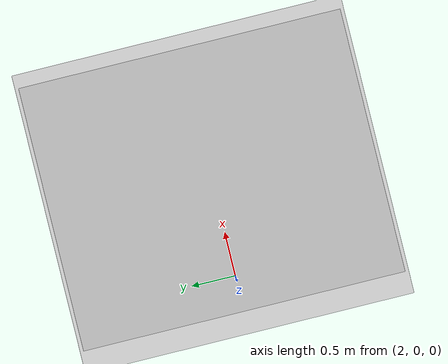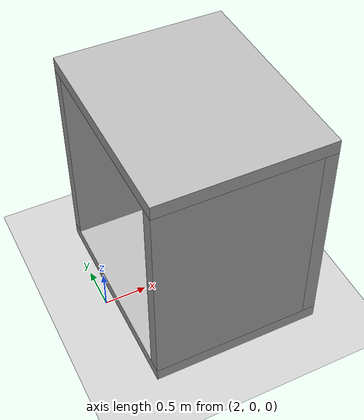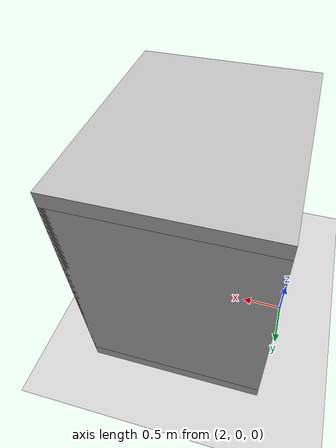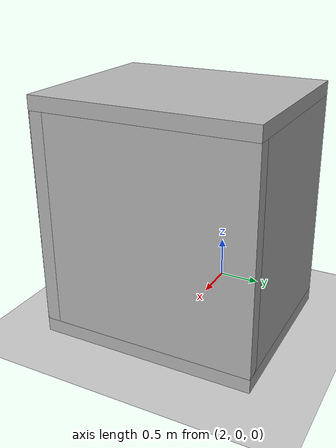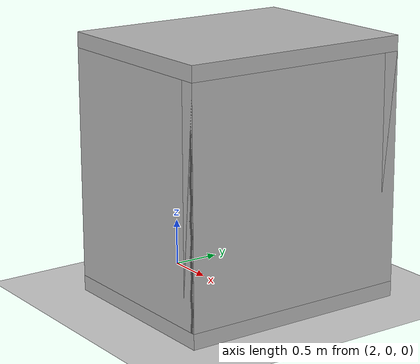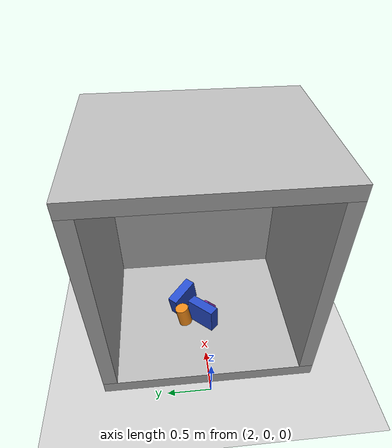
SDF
<sdf version="1.6">
 <world name="default">
  <light name="sun" type="directional">
   <pose>0 0 10 0 -0 0</pose>
   <diffuse>0.8 0.8 0.8 1</diffuse>
   <specular>0.1 0.1 0.1 1</specular>
   <attenuation>
    <range>1000</range>
    <constant>0.9</constant>
    <linear>0.01</linear>
    <quadratic>0.001</quadratic>
   </attenuation>
   <direction>-0.5 0.5 -1</direction>
  </light>
  <model name="ground_plane">
   <static>1</static>
   <link name="link">
    <collision name="collision">
     <geometry><plane><normal>0 0 1</normal><size>100 100</size></plane></geometry>
     <surface><friction><ode><mu>100</mu><mu2>50</mu2></ode></friction></surface>
    </collision>
    <visual name="visual">
     <cast_shadows>0</cast_shadows>
     <geometry><plane><normal>0 0 1</normal><size>100 100</size></plane></geometry>
     <material>
      <script><uri>file://media/materials/scripts/gazebo.material</uri><name>Gazebo/Grey</name></script>
     </material>
    </visual>
   </link>
  </model>
  <physics name="default_physics" default="0" type="ode">
   <real_time_update_rate>0</real_time_update_rate>
   <max_step_size>0.001</max_step_size>
   <real_time_factor>1</real_time_factor>
  </physics>
  <gravity>0 0 -9.8</gravity>
  <magnetic_field>6e-06 2.3e-05 -4.2e-05</magnetic_field>
  <atmosphere type="adiabatic"/>
  <scene><ambient>0.4 0.4 0.4 1</ambient><background>0.7 0.7 0.7 1</background><shadows>1</shadows></scene>
  <spherical_coordinates>
   <surface_model>EARTH_WGS84</surface_model>
   <latitude_deg>0</latitude_deg>
   <longitude_deg>0</longitude_deg>
   <elevation>0</elevation>
   <heading_deg>0</heading_deg>
  </spherical_coordinates>
  <model name="container">
   <link name="container">
    <inertial>
     <pose>0.22439 0 1.64098 0 -0 0</pose>
     <mass>205</mass>
     <inertia>
      <ixx>329.883</ixx>
      <ixy>1.59439e-15</ixy>
      <ixz>12.9249</ixz>
      <iyy>229.817</iyy>
      <iyz>1.16598e-14</iyz>
      <izz>267.609</izz>
     </inertia>
    </inertial>
    <collision name="container_back_collision">
     <pose>0.92 0 1.36 0 -0 0</pose>
     <geometry><box><size>0.16 2.45 2.4</size></box></geometry>
    </collision>
    <collision name="container_bottom_collision_1">
     <pose>0 0 0.08 0 -0 0</pose>
     <geometry><box><size>2 2.45 0.16</size></box></geometry>
    </collision>
    <collision name="container_left_collision_2">
     <pose>0 1.145 1.36 0 -0 0</pose>
     <geometry><box><size>2 0.16 2.4</size></box></geometry>
    </collision>
    <collision name="container_right_collision_3">
     <pose>0 -1.145 1.36 0 -0 0</pose>
     <geometry><box><size>2 0.16 2.4</size></box></geometry>
    </collision>
    <collision name="container_top_collision_4">
     <pose>0 0 2.64 0 -0 0</pose>
     <geometry><box><size>2 2.45 0.16</size></box></geometry>
    </collision>
    <visual name="container_back_visual">
     <pose>0.92 0 1.36 0 -0 0</pose>
     <geometry><box><size>0.16 2.45 2.4</size></box></geometry>
    </visual>
    <visual name="container_bottom_visual_1">
     <pose>0 0 0.08 0 -0 0</pose>
     <geometry><box><size>2 2.45 0.16</size></box></geometry>
    </visual>
    <visual name="container_left_visual_2">
     <pose>0 1.145 1.36 0 -0 0</pose>
     <geometry><box><size>2 0.16 2.4</size></box></geometry>
    </visual>
    <visual name="container_right_visual_3">
     <pose>0 -1.145 1.36 0 -0 0</pose>
     <geometry><box><size>2 0.16 2.4</size></box></geometry>
    </visual>
    <visual name="container_top_visual_4">
     <pose>0 0 2.64 0 -0 0</pose>
     <geometry><box><size>2 2.45 0.16</size></box></geometry>
    </visual>
   </link>
   <pose>3.10042 0.000614 1e-06 0 1e-06 -0.000157</pose>
  </model>
  <model name="roblog-dhl-box-blue-simple-0-2072">
   <link name="link">
    <inertial>
     <mass>0.25</mass>
     <inertia>
      <ixx>0.00218083</ixx>
      <ixy>0</ixy>
      <ixz>0</ixz>
      <iyy>0.00473308</iyy>
      <iyz>0</iyz>
      <izz>0.00321375</izz>
     </inertia>
    </inertial>
    <collision name="link_collision"><geometry><box><size>0.372 0.126 0.298</size></box></geometry></collision>
    <visual name="link_visual">
     <geometry><box><size>0.372 0.126 0.298</size></box></geometry>
     <material>
      <script><name>Gazebo/Blue</name><uri>file://media/materials/scripts/gazebo.material</uri></script>
     </material>
    </visual>
   </link>
   <pose>2.87275 0.000357 0.327246 -0.042217 -0.087729 -2.35377</pose>
  </model>
  <model name="roblog-dhl-box-blue-simple-1-2073">
   <link name="link">
    <inertial>
     <mass>0.25</mass>
     <inertia>
      <ixx>0.00218083</ixx>
      <ixy>0</ixy>
      <ixz>0</ixz>
      <iyy>0.00473308</iyy>
      <iyz>0</iyz>
      <izz>0.00321375</izz>
     </inertia>
    </inertial>
    <collision name="link_collision"><geometry><box><size>0.372 0.126 0.298</size></box></geometry></collision>
    <visual name="link_visual">
     <geometry><box><size>0.372 0.126 0.298</size></box></geometry>
     <material>
      <script><name>Gazebo/Blue</name><uri>file://media/materials/scripts/gazebo.material</uri></script>
     </material>
    </visual>
   </link>
   <pose>3.15394 0.238738 0.339522 -0.019408 -0.170175 -0.752963</pose>
  </model>
  <model name="roblog-vanish-detergent-simple-2-2074">
   <link name="link">
    <inertial>
     <mass>0.08</mass>
     <inertia>
      <ixx>0.000324987</ixx>
      <ixy>0</ixy>
      <ixz>0</ixz>
      <iyy>0.000324987</iyy>
      <iyz>0</iyz>
      <izz>0.00011664</izz>
     </inertia>
    </inertial>
    <collision name="link_collision">
     <geometry><cylinder><length>0.2</length><radius>0.054</radius></cylinder></geometry>
    </collision>
    <visual name="link_visual">
     <geometry><cylinder><length>0.2</length><radius>0.054</radius></cylinder></geometry>
     <material>
      <script><name>Gazebo/PurpleGlow</name><uri>file://media/materials/scripts/gazebo.material</uri></script>
     </material>
    </visual>
    <velocity_decay><linear>0.005</linear><angular>0.005</angular></velocity_decay>
   </link>
   <pose>3.0165 -0.089387 0.272436 -0.504018 -0.414593 -0.177385</pose>
  </model>
  <model name="roblog-maisels-barrel-simple-3-2075">
   <link name="link">
    <inertial>
     <mass>0.54</mass>
     <inertia>
      <ixx>0.00354312</ixx>
      <ixy>0</ixy>
      <ixz>0</ixz>
      <iyy>0.00354312</iyy>
      <iyz>0</iyz>
      <izz>0.00181548</izz>
     </inertia>
    </inertial>
    <collision name="link_collision">
     <geometry><cylinder><length>0.242</length><radius>0.082</radius></cylinder></geometry>
    </collision>
    <visual name="link_visual">
     <geometry><cylinder><length>0.242</length><radius>0.082</radius></cylinder></geometry>
     <material>
      <script><name>Gazebo/Orange</name><uri>file://media/materials/scripts/gazebo.material</uri></script>
     </material>
    </visual>
    <velocity_decay><linear>0.005</linear><angular>0.005</angular></velocity_decay>
   </link>
   <pose>2.89635 0.245854 0.296144 -0.218371 0.045941 -0.353204</pose>
  </model>
 </world>
</sdf>
